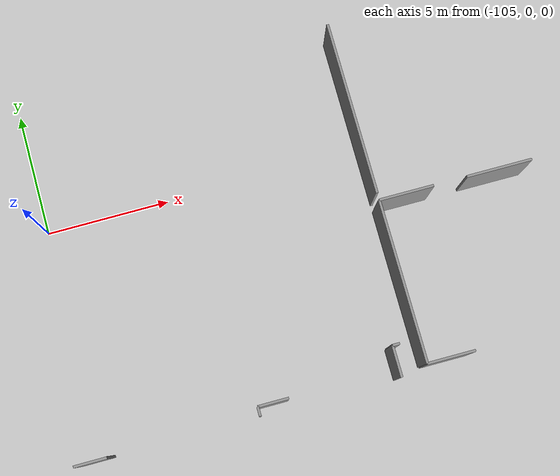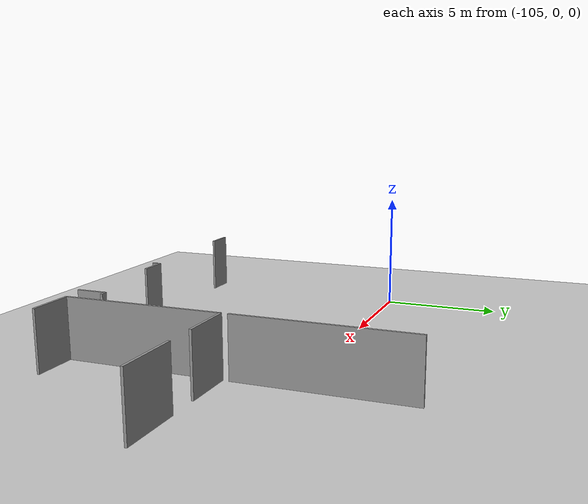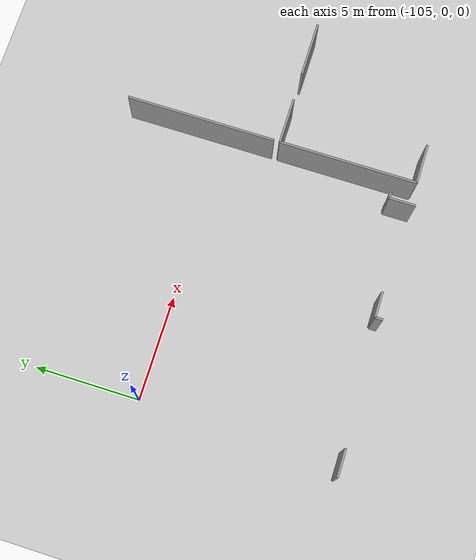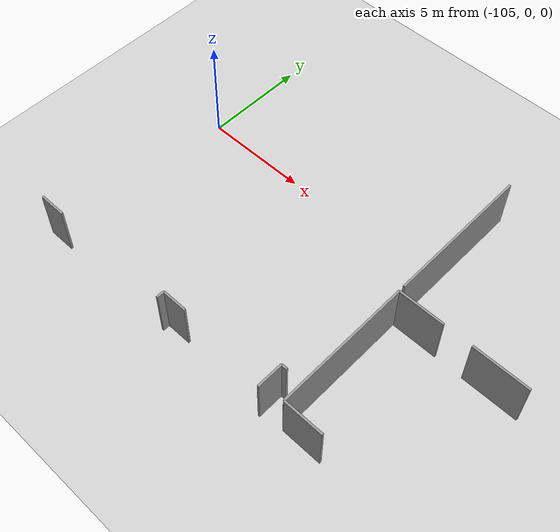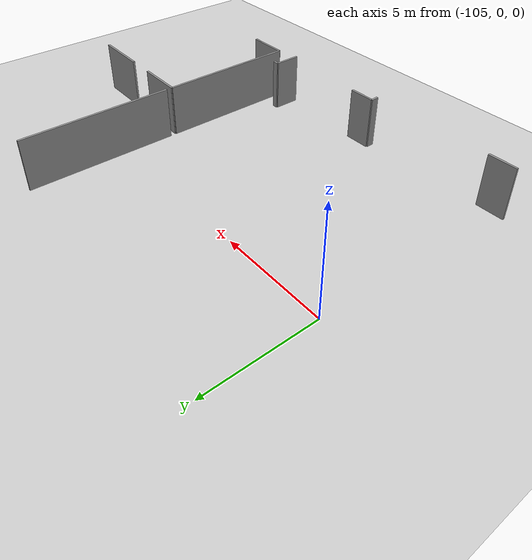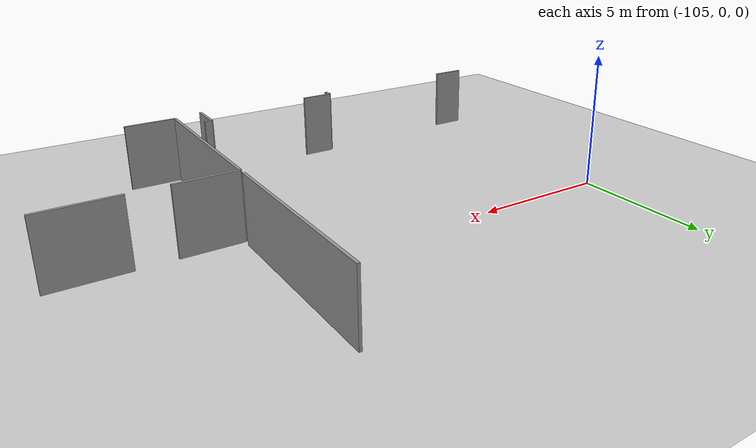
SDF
<sdf version="1.6">
 <world name="default">
  <model name="ground_plane">
   <static>1</static>
   <link name="link">
    <collision name="collision">
     <geometry><plane><normal>0 0 1</normal><size>100 100</size></plane></geometry>
     <surface><friction><ode><mu>100</mu><mu2>50</mu2></ode></friction></surface>
    </collision>
    <visual name="visual">
     <cast_shadows>0</cast_shadows>
     <geometry><plane><normal>0 0 1</normal><size>100 100</size></plane></geometry>
     <material>
      <script><uri>file://media/materials/scripts/gazebo.material</uri><name>Gazebo/Grey</name></script>
     </material>
    </visual>
   </link>
  </model>
  <model name="0510035341_A_40_1_103">
   <static>1</static>
   <link name="Wall_4">
    <collision name="Wall_4_Collision">
     <geometry><box><size>1.29718748016 0.1 2.5</size></box></geometry>
     <pose>0.64859374008 0 1.25 0 0 0</pose>
    </collision>
    <visual name="Wall_4_Visual">
     <pose>0.64859374008 0 1.25 0 0 0</pose>
     <geometry><box><size>1.29718748016 0.1 2.5</size></box></geometry>
     <material>
      <script><uri>file://media/materials/scripts/gazebo.material</uri><name>Gazebo/Grey</name></script>
      <ambient>1 1 1 1</ambient>
     </material>
    </visual>
    <pose>8.39260999302 -33.4322900133 0 0 0 3.14159265359</pose>
   </link>
   <link name="Wall_11">
    <collision name="Wall_11_Collision">
     <geometry><box><size>0.278585486636 0.1 2.5</size></box></geometry>
     <pose>0.139292743318 0 1.25 0 0 0</pose>
    </collision>
    <visual name="Wall_11_Visual">
     <pose>0.139292743318 0 1.25 0 0 0</pose>
     <geometry><box><size>0.278585486636 0.1 2.5</size></box></geometry>
     <material>
      <script><uri>file://media/materials/scripts/gazebo.material</uri><name>Gazebo/Grey</name></script>
      <ambient>1 1 1 1</ambient>
     </material>
    </visual>
    <pose>20.0962478573 -32.2117960764 0 0 0 3.14159265359</pose>
   </link>
   <link name="Wall_12">
    <collision name="Wall_12_Collision">
     <geometry><box><size>1.24817471907 0.1 2.5</size></box></geometry>
     <pose>0.624087359533 0 1.25 0 0 0</pose>
    </collision>
    <visual name="Wall_12_Visual">
     <pose>0.624087359533 0 1.25 0 0 0</pose>
     <geometry><box><size>1.24817471907 0.1 2.5</size></box></geometry>
     <material>
      <script><uri>file://media/materials/scripts/gazebo.material</uri><name>Gazebo/Grey</name></script>
      <ambient>1 1 1 1</ambient>
     </material>
    </visual>
    <pose>19.8176623706 -32.2117960764 0 0 0 -1.57079632679</pose>
   </link>
   <link name="Wall_16">
    <collision name="Wall_16_Collision">
     <geometry><box><size>1.2121135166 0.1 2.5</size></box></geometry>
     <pose>0.606056758301 0 1.25 0 0 0</pose>
    </collision>
    <visual name="Wall_16_Visual">
     <pose>0.606056758301 0 1.25 0 0 0</pose>
     <geometry><box><size>1.2121135166 0.1 2.5</size></box></geometry>
     <material>
      <script><uri>file://media/materials/scripts/gazebo.material</uri><name>Gazebo/Grey</name></script>
      <ambient>1 1 1 1</ambient>
     </material>
    </visual>
    <pose>15.5053012507 -33.0886927814 0 0 0 3.14159265359</pose>
   </link>
   <link name="Wall_17">
    <collision name="Wall_17_Collision">
     <geometry><box><size>0.365945019364 0.1 2.5</size></box></geometry>
     <pose>0.182972509682 0 1.25 0 0 0</pose>
    </collision>
    <visual name="Wall_17_Visual">
     <pose>0.182972509682 0 1.25 0 0 0</pose>
     <geometry><box><size>0.365945019364 0.1 2.5</size></box></geometry>
     <material>
      <script><uri>file://media/materials/scripts/gazebo.material</uri><name>Gazebo/Grey</name></script>
      <ambient>1 1 1 1</ambient>
     </material>
    </visual>
    <pose>14.2931877341 -33.0886927814 0 0 0 -1.57079632679</pose>
   </link>
   <link name="Wall_20">
    <collision name="Wall_20_Collision">
     <geometry><box><size>7.07993143292 0.1 2.5</size></box></geometry>
     <pose>3.53996571646 0 1.25 0 0 0</pose>
    </collision>
    <visual name="Wall_20_Visual">
     <pose>3.53996571646 0 1.25 0 0 0</pose>
     <geometry><box><size>7.07993143292 0.1 2.5</size></box></geometry>
     <material>
      <script><uri>file://media/materials/scripts/gazebo.material</uri><name>Gazebo/Grey</name></script>
      <ambient>1 1 1 1</ambient>
     </material>
    </visual>
    <pose>20.8954352105 -26.3993397245 0 0 0 1.57079632679</pose>
   </link>
   <link name="Wall_26">
    <collision name="Wall_26_Collision">
     <geometry><box><size>6.52758555012 0.1 2.5</size></box></geometry>
     <pose>3.26379277506 0 1.25 0 0 0</pose>
    </collision>
    <visual name="Wall_26_Visual">
     <pose>3.26379277506 0 1.25 0 0 0</pose>
     <geometry><box><size>6.52758555012 0.1 2.5</size></box></geometry>
     <material>
      <script><uri>file://media/materials/scripts/gazebo.material</uri><name>Gazebo/Grey</name></script>
      <ambient>1 1 1 1</ambient>
     </material>
    </visual>
    <pose>20.8967049711 -33.21490699 0 0 0 1.57079632679</pose>
   </link>
   <link name="Wall_27">
    <collision name="Wall_27_Collision">
     <geometry><box><size>2.19693987683 0.1 2.5</size></box></geometry>
     <pose>1.09846993842 0 1.25 0 0 0</pose>
    </collision>
    <visual name="Wall_27_Visual">
     <pose>1.09846993842 0 1.25 0 0 0</pose>
     <geometry><box><size>2.19693987683 0.1 2.5</size></box></geometry>
     <material>
      <script><uri>file://media/materials/scripts/gazebo.material</uri><name>Gazebo/Grey</name></script>
      <ambient>1 1 1 1</ambient>
     </material>
    </visual>
    <pose>20.8967049711 -26.6873214399 0 0 0 0.0</pose>
   </link>
   <link name="Wall_28">
    <collision name="Wall_28_Collision">
     <geometry><box><size>2.64262586502 0.1 2.5</size></box></geometry>
     <pose>1.32131293251 0 1.25 0 0 0</pose>
    </collision>
    <visual name="Wall_28_Visual">
     <pose>1.32131293251 0 1.25 0 0 0</pose>
     <geometry><box><size>2.64262586502 0.1 2.5</size></box></geometry>
     <material>
      <script><uri>file://media/materials/scripts/gazebo.material</uri><name>Gazebo/Grey</name></script>
      <ambient>1 1 1 1</ambient>
     </material>
    </visual>
    <pose>24.4367976636 -26.6873214399 0 0 0 0.0</pose>
   </link>
   <link name="Wall_32">
    <collision name="Wall_32_Collision">
     <geometry><box><size>1.90565964336 0.1 2.5</size></box></geometry>
     <pose>0.952829821681 0 1.25 0 0 0</pose>
    </collision>
    <visual name="Wall_32_Visual">
     <pose>0.952829821681 0 1.25 0 0 0</pose>
     <geometry><box><size>1.90565964336 0.1 2.5</size></box></geometry>
     <material>
      <script><uri>file://media/materials/scripts/gazebo.material</uri><name>Gazebo/Grey</name></script>
      <ambient>1 1 1 1</ambient>
     </material>
    </visual>
    <pose>22.8023617548 -33.2182083677 0 0 0 3.13986024594</pose>
   </link>
   <pose>-112.9 24.0688781665 0 0 0 0</pose>
  </model>
 </world>
</sdf>
